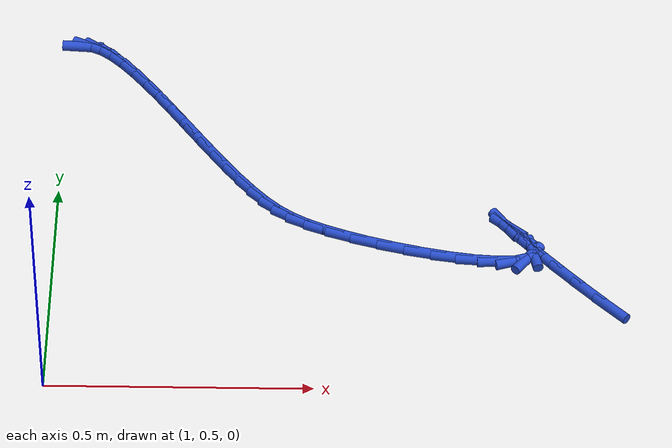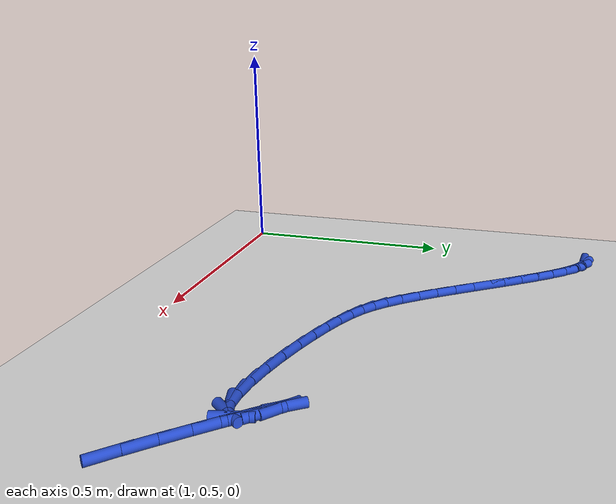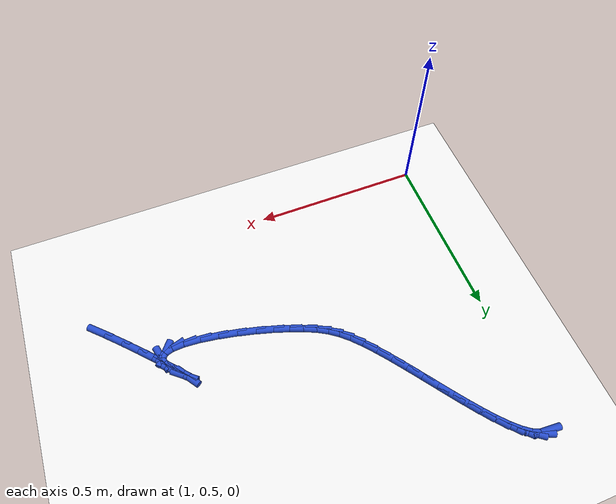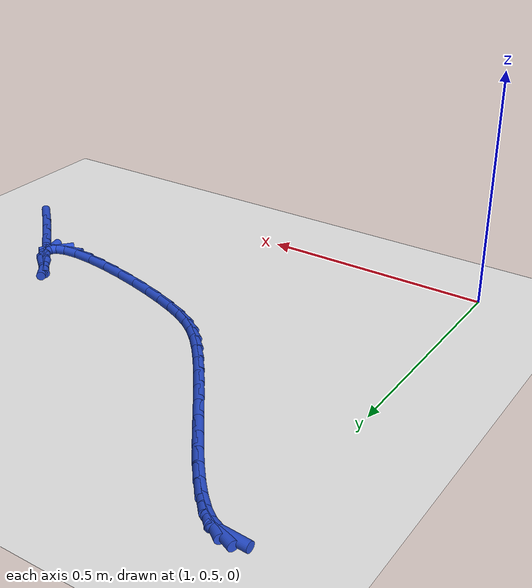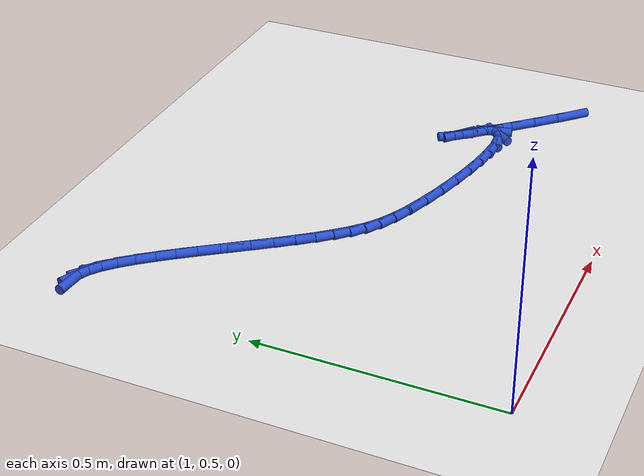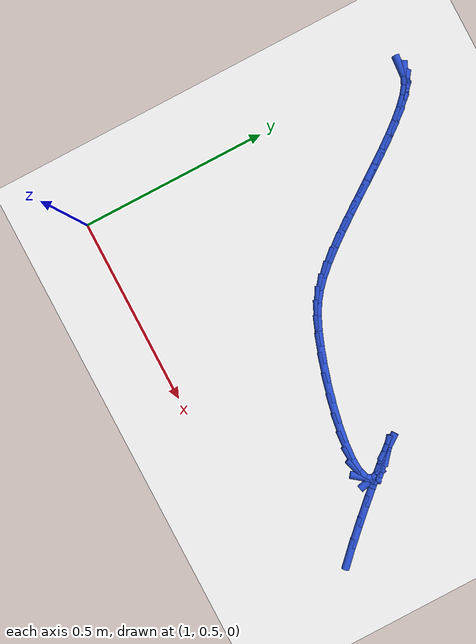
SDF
<sdf version="1.6">
 <world name="default">
  <model name="ground_plane">
   <static>1</static>
   <link name="link">
    <collision name="collision">
     <geometry><plane><normal>0 0 1</normal><size>100 100</size></plane></geometry>
     <surface><friction><ode><mu>100</mu><mu2>50</mu2></ode></friction></surface>
    </collision>
    <visual name="visual">
     <cast_shadows>0</cast_shadows>
     <geometry><plane><normal>0 0 1</normal><size>100 100</size></plane></geometry>
     <material>
      <script><uri>file://media/materials/scripts/gazebo.material</uri><name>Gazebo/WhiteGlow</name></script>
     </material>
    </visual>
   </link>
  </model>
  <model name="line">
   <link name="link_62">
    <pose>1.0247685956993833 1.3913590255691382 0.01 0 1.57 -0.0695958296253201</pose>
    <collision name="collision">
     <geometry><cylinder><radius>0.01</radius><length>0.08</length></cylinder></geometry>
    </collision>
    <visual name="visual">
     <material>
      <script><name>Gazebo/Blue</name><uri>file://media/materials/scripts/gazebo.material</uri></script>
     </material>
     <geometry><cylinder><radius>0.01</radius><length>0.08</length></cylinder></geometry>
    </visual>
   </link>
   <link name="link_63">
    <pose>1.0429132152024498 1.390094192956103 0.01 0 1.57 -0.4246035085404892</pose>
    <collision name="collision">
     <geometry><cylinder><radius>0.01</radius><length>0.08</length></cylinder></geometry>
    </collision>
    <visual name="visual">
     <material>
      <script><name>Gazebo/Blue</name><uri>file://media/materials/scripts/gazebo.material</uri></script>
     </material>
     <geometry><cylinder><radius>0.01</radius><length>0.08</length></cylinder></geometry>
    </visual>
   </link>
   <link name="link_64">
    <pose>1.0628775167572475 1.3810682217665922 0.01 0 1.57 -0.6342842541538061</pose>
    <collision name="collision">
     <geometry><cylinder><radius>0.01</radius><length>0.08</length></cylinder></geometry>
    </collision>
    <visual name="visual">
     <material>
      <script><name>Gazebo/Blue</name><uri>file://media/materials/scripts/gazebo.material</uri></script>
     </material>
     <geometry><cylinder><radius>0.01</radius><length>0.08</length></cylinder></geometry>
    </visual>
   </link>
   <link name="link_65">
    <pose>1.0844610495522642 1.3651892786293804 0.01 0 1.57 -0.7591122647836013</pose>
    <collision name="collision">
     <geometry><cylinder><radius>0.01</radius><length>0.08</length></cylinder></geometry>
    </collision>
    <visual name="visual">
     <material>
      <script><name>Gazebo/Blue</name><uri>file://media/materials/scripts/gazebo.material</uri></script>
     </material>
     <geometry><cylinder><radius>0.01</radius><length>0.08</length></cylinder></geometry>
    </visual>
   </link>
   <link name="link_66">
    <pose>1.1074633627759871 1.3433655301732428 0.01 0 1.57 -0.8370298197613192</pose>
    <collision name="collision">
     <geometry><cylinder><radius>0.01</radius><length>0.08</length></cylinder></geometry>
    </collision>
    <visual name="visual">
     <material>
      <script><name>Gazebo/Blue</name><uri>file://media/materials/scripts/gazebo.material</uri></script>
     </material>
     <geometry><cylinder><radius>0.01</radius><length>0.08</length></cylinder></geometry>
    </visual>
   </link>
   <link name="link_67">
    <pose>1.1316840056169029 1.3165051430269532 0.01 0 1.57 -0.8873131862566405</pose>
    <collision name="collision">
     <geometry><cylinder><radius>0.01</radius><length>0.08</length></cylinder></geometry>
    </collision>
    <visual name="visual">
     <material>
      <script><name>Gazebo/Blue</name><uri>file://media/materials/scripts/gazebo.material</uri></script>
     </material>
     <geometry><cylinder><radius>0.01</radius><length>0.08</length></cylinder></geometry>
    </visual>
   </link>
   <link name="link_68">
    <pose>1.1569225272634998 1.2855162838192866 0.01 0 1.57 -0.9198708373193974</pose>
    <collision name="collision">
     <geometry><cylinder><radius>0.01</radius><length>0.08</length></cylinder></geometry>
    </collision>
    <visual name="visual">
     <material>
      <script><name>Gazebo/Blue</name><uri>file://media/materials/scripts/gazebo.material</uri></script>
     </material>
     <geometry><cylinder><radius>0.01</radius><length>0.08</length></cylinder></geometry>
    </visual>
   </link>
   <link name="link_69">
    <pose>1.1829784769042644 1.2513071191790184 0.01 0 1.57 -0.9399975524762053</pose>
    <collision name="collision">
     <geometry><cylinder><radius>0.01</radius><length>0.08</length></cylinder></geometry>
    </collision>
    <visual name="visual">
     <material>
      <script><name>Gazebo/Blue</name><uri>file://media/materials/scripts/gazebo.material</uri></script>
     </material>
     <geometry><cylinder><radius>0.01</radius><length>0.08</length></cylinder></geometry>
    </visual>
   </link>
   <link name="link_70">
    <pose>1.2096514037276849 1.2147858157349216 0.01 0 1.57 -0.9505473539609733</pose>
    <collision name="collision">
     <geometry><cylinder><radius>0.01</radius><length>0.08</length></cylinder></geometry>
    </collision>
    <visual name="visual">
     <material>
      <script><name>Gazebo/Blue</name><uri>file://media/materials/scripts/gazebo.material</uri></script>
     </material>
     <geometry><cylinder><radius>0.01</radius><length>0.08</length></cylinder></geometry>
    </visual>
   </link>
   <link name="link_71">
    <pose>1.2367408569222473 1.1768605401157723 0.01 0 1.57 -0.9529309636579488</pose>
    <collision name="collision">
     <geometry><cylinder><radius>0.01</radius><length>0.08</length></cylinder></geometry>
    </collision>
    <visual name="visual">
     <material>
      <script><name>Gazebo/Blue</name><uri>file://media/materials/scripts/gazebo.material</uri></script>
     </material>
     <geometry><cylinder><radius>0.01</radius><length>0.08</length></cylinder></geometry>
    </visual>
   </link>
   <link name="link_72">
    <pose>1.2640463856764397 1.1384394589503446 0.01 0 1.57 -0.947555607154451</pose>
    <collision name="collision">
     <geometry><cylinder><radius>0.01</radius><length>0.08</length></cylinder></geometry>
    </collision>
    <visual name="visual">
     <material>
      <script><name>Gazebo/Blue</name><uri>file://media/materials/scripts/gazebo.material</uri></script>
     </material>
     <geometry><cylinder><radius>0.01</radius><length>0.08</length></cylinder></geometry>
    </visual>
   </link>
   <link name="link_73">
    <pose>1.2913675391787491 1.1004307388674135 0.01 0 1.57 -0.9339538489676305</pose>
    <collision name="collision">
     <geometry><cylinder><radius>0.01</radius><length>0.08</length></cylinder></geometry>
    </collision>
    <visual name="visual">
     <material>
      <script><name>Gazebo/Blue</name><uri>file://media/materials/scripts/gazebo.material</uri></script>
     </material>
     <geometry><cylinder><radius>0.01</radius><length>0.08</length></cylinder></geometry>
    </visual>
   </link>
   <link name="link_74">
    <pose>1.3185038666176638 1.0637425464957528 0.01 0 1.57 -0.9106720111792025</pose>
    <collision name="collision">
     <geometry><cylinder><radius>0.01</radius><length>0.08</length></cylinder></geometry>
    </collision>
    <visual name="visual">
     <material>
      <script><name>Gazebo/Blue</name><uri>file://media/materials/scripts/gazebo.material</uri></script>
     </material>
     <geometry><cylinder><radius>0.01</radius><length>0.08</length></cylinder></geometry>
    </visual>
   </link>
   <link name="link_75">
    <pose>1.3452549171816692 1.0292830484641378 0.01 0 1.57 -0.8748698561009407</pose>
    <collision name="collision">
     <geometry><cylinder><radius>0.01</radius><length>0.08</length></cylinder></geometry>
    </collision>
    <visual name="visual">
     <material>
      <script><name>Gazebo/Blue</name><uri>file://media/materials/scripts/gazebo.material</uri></script>
     </material>
     <geometry><cylinder><radius>0.01</radius><length>0.08</length></cylinder></geometry>
    </visual>
   </link>
   <link name="link_76">
    <pose>1.371420240059254 0.9979604114013434 0.01 0 1.57 -0.8214361453644745</pose>
    <collision name="collision">
     <geometry><cylinder><radius>0.01</radius><length>0.08</length></cylinder></geometry>
    </collision>
    <visual name="visual">
     <material>
      <script><name>Gazebo/Blue</name><uri>file://media/materials/scripts/gazebo.material</uri></script>
     </material>
     <geometry><cylinder><radius>0.01</radius><length>0.08</length></cylinder></geometry>
    </visual>
   </link>
   <link name="link_77">
    <pose>1.3967993844423998 0.9706828019328744 0.01 0 1.57 -0.7413354944884598</pose>
    <collision name="collision">
     <geometry><cylinder><radius>0.01</radius><length>0.08</length></cylinder></geometry>
    </collision>
    <visual name="visual">
     <material>
      <script><name>Gazebo/Blue</name><uri>file://media/materials/scripts/gazebo.material</uri></script>
     </material>
     <geometry><cylinder><radius>0.01</radius><length>0.08</length></cylinder></geometry>
    </visual>
   </link>
   <link name="link_78">
    <pose>1.4215902162116727 0.9479857675130741 0.01 0 1.57 -0.6329336689838985</pose>
    <collision name="collision">
     <geometry><cylinder><radius>0.01</radius><length>0.08</length></cylinder></geometry>
    </collision>
    <visual name="visual">
     <material>
      <script><name>Gazebo/Blue</name><uri>file://media/materials/scripts/gazebo.material</uri></script>
     </material>
     <geometry><cylinder><radius>0.01</radius><length>0.08</length></cylinder></geometry>
    </visual>
   </link>
   <link name="link_79">
    <pose>1.4475740198498712 0.9289235917073313 0.01 0 1.57 -0.5183442523775311</pose>
    <collision name="collision">
     <geometry><cylinder><radius>0.01</radius><length>0.08</length></cylinder></geometry>
    </collision>
    <visual name="visual">
     <material>
      <script><name>Gazebo/Blue</name><uri>file://media/materials/scripts/gazebo.material</uri></script>
     </material>
     <geometry><cylinder><radius>0.01</radius><length>0.08</length></cylinder></geometry>
    </visual>
   </link>
   <link name="link_80">
    <pose>1.4769254876514384 0.9121825310891853 0.01 0 1.57 -0.4236036270479465</pose>
    <collision name="collision">
     <geometry><cylinder><radius>0.01</radius><length>0.08</length></cylinder></geometry>
    </collision>
    <visual name="visual">
     <material>
      <script><name>Gazebo/Blue</name><uri>file://media/materials/scripts/gazebo.material</uri></script>
     </material>
     <geometry><cylinder><radius>0.01</radius><length>0.08</length></cylinder></geometry>
    </visual>
   </link>
   <link name="link_81">
    <pose>1.5118193119108163 0.8964488422321748 0.01 0 1.57 -0.358852729025944</pose>
    <collision name="collision">
     <geometry><cylinder><radius>0.01</radius><length>0.08</length></cylinder></geometry>
    </collision>
    <visual name="visual">
     <material>
      <script><name>Gazebo/Blue</name><uri>file://media/materials/scripts/gazebo.material</uri></script>
     </material>
     <geometry><cylinder><radius>0.01</radius><length>0.08</length></cylinder></geometry>
    </visual>
   </link>
   <link name="link_82">
    <pose>1.5537262659030808 0.8807298119460579 0.01 0 1.57 -0.312945715665771</pose>
    <collision name="collision">
     <geometry><cylinder><radius>0.01</radius><length>0.08</length></cylinder></geometry>
    </collision>
    <visual name="visual">
     <material>
      <script><name>Gazebo/Blue</name><uri>file://media/materials/scripts/gazebo.material</uri></script>
     </material>
     <geometry><cylinder><radius>0.01</radius><length>0.08</length></cylinder></geometry>
    </visual>
   </link>
   <link name="link_83">
    <pose>1.6011606317082903 0.8653810683136692 0.01 0 1.57 -0.27434147482503407</pose>
    <collision name="collision">
     <geometry><cylinder><radius>0.01</radius><length>0.08</length></cylinder></geometry>
    </collision>
    <visual name="visual">
     <material>
      <script><name>Gazebo/Blue</name><uri>file://media/materials/scripts/gazebo.material</uri></script>
     </material>
     <geometry><cylinder><radius>0.01</radius><length>0.08</length></cylinder></geometry>
    </visual>
   </link>
   <link name="link_84">
    <pose>1.6518606219428615 0.851112174680822 0.01 0 1.57 -0.23683497037293266</pose>
    <collision name="collision">
     <geometry><cylinder><radius>0.01</radius><length>0.08</length></cylinder></geometry>
    </collision>
    <visual name="visual">
     <material>
      <script><name>Gazebo/Blue</name><uri>file://media/materials/scripts/gazebo.material</uri></script>
     </material>
     <geometry><cylinder><radius>0.01</radius><length>0.08</length></cylinder></geometry>
    </visual>
   </link>
   <link name="link_85">
    <pose>1.7035644460419246 0.8386326958441921 0.01 0 1.57 -0.19532328670407614</pose>
    <collision name="collision">
     <geometry><cylinder><radius>0.01</radius><length>0.08</length></cylinder></geometry>
    </collision>
    <visual name="visual">
     <material>
      <script><name>Gazebo/Blue</name><uri>file://media/materials/scripts/gazebo.material</uri></script>
     </material>
     <geometry><cylinder><radius>0.01</radius><length>0.08</length></cylinder></geometry>
    </visual>
   </link>
   <link name="link_86">
    <pose>1.7540103134406069 0.8286521966004562 0.01 0 1.57 -0.1433215339217557</pose>
    <collision name="collision">
     <geometry><cylinder><radius>0.01</radius><length>0.08</length></cylinder></geometry>
    </collision>
    <visual name="visual">
     <material>
      <script><name>Gazebo/Blue</name><uri>file://media/materials/scripts/gazebo.material</uri></script>
     </material>
     <geometry><cylinder><radius>0.01</radius><length>0.08</length></cylinder></geometry>
    </visual>
   </link>
   <link name="link_87">
    <pose>1.8009364335740368 0.8218802417462893 0.01 0 1.57 -0.069250483388033</pose>
    <collision name="collision">
     <geometry><cylinder><radius>0.01</radius><length>0.08</length></cylinder></geometry>
    </collision>
    <visual name="visual">
     <material>
      <script><name>Gazebo/Blue</name><uri>file://media/materials/scripts/gazebo.material</uri></script>
     </material>
     <geometry><cylinder><radius>0.01</radius><length>0.08</length></cylinder></geometry>
    </visual>
   </link>
   <link name="link_88">
    <pose>1.8420810158773433 0.8190263960783677 0.01 0 1.57 0.05353674185991613</pose>
    <collision name="collision">
     <geometry><cylinder><radius>0.01</radius><length>0.08</length></cylinder></geometry>
    </collision>
    <visual name="visual">
     <material>
      <script><name>Gazebo/Blue</name><uri>file://media/materials/scripts/gazebo.material</uri></script>
     </material>
     <geometry><cylinder><radius>0.01</radius><length>0.08</length></cylinder></geometry>
    </visual>
   </link>
   <link name="link_89">
    <pose>1.8751822697856557 0.8208002243933675 0.01 0 1.57 0.3023762385475082</pose>
    <collision name="collision">
     <geometry><cylinder><radius>0.01</radius><length>0.08</length></cylinder></geometry>
    </collision>
    <visual name="visual">
     <material>
      <script><name>Gazebo/Blue</name><uri>file://media/materials/scripts/gazebo.material</uri></script>
     </material>
     <geometry><cylinder><radius>0.01</radius><length>0.08</length></cylinder></geometry>
    </visual>
   </link>
   <link name="link_90">
    <pose>1.8979784047341017 0.8279112914879647 0.01 0 1.57 0.9099745277133447</pose>
    <collision name="collision">
     <geometry><cylinder><radius>0.01</radius><length>0.08</length></cylinder></geometry>
    </collision>
    <visual name="visual">
     <material>
      <script><name>Gazebo/Blue</name><uri>file://media/materials/scripts/gazebo.material</uri></script>
     </material>
     <geometry><cylinder><radius>0.01</radius><length>0.08</length></cylinder></geometry>
    </visual>
   </link>
   <link name="link_91">
    <pose>1.9082076301578104 0.8410691621588351 0.01 0 1.57 -1.3438124528086257</pose>
    <collision name="collision">
     <geometry><cylinder><radius>0.01</radius><length>0.08</length></cylinder></geometry>
    </collision>
    <visual name="visual">
     <material>
      <script><name>Gazebo/Blue</name><uri>file://media/materials/scripts/gazebo.material</uri></script>
     </material>
     <geometry><cylinder><radius>0.01</radius><length>0.08</length></cylinder></geometry>
    </visual>
   </link>
   <link name="link_92">
    <pose>1.9036081554919098 0.8609834012026544 0.01 0 1.57 -0.9158995933138584</pose>
    <collision name="collision">
     <geometry><cylinder><radius>0.01</radius><length>0.08</length></cylinder></geometry>
    </collision>
    <visual name="visual">
     <material>
      <script><name>Gazebo/Blue</name><uri>file://media/materials/scripts/gazebo.material</uri></script>
     </material>
     <geometry><cylinder><radius>0.01</radius><length>0.08</length></cylinder></geometry>
    </visual>
   </link>
   <link name="link_93">
    <pose>1.883371850250374 0.8873341314936313 0.01 0 1.57 -0.7956234269323262</pose>
    <collision name="collision">
     <geometry><cylinder><radius>0.01</radius><length>0.08</length></cylinder></geometry>
    </collision>
    <visual name="visual">
     <material>
      <script><name>Gazebo/Blue</name><uri>file://media/materials/scripts/gazebo.material</uri></script>
     </material>
     <geometry><cylinder><radius>0.01</radius><length>0.08</length></cylinder></geometry>
    </visual>
   </link>
   <link name="link_94">
    <pose>1.862548687568971 0.9085875533359357 0.01 0 1.57 -0.6902341370173587</pose>
    <collision name="collision">
     <geometry><cylinder><radius>0.01</radius><length>0.08</length></cylinder></geometry>
    </collision>
    <visual name="visual">
     <material>
      <script><name>Gazebo/Blue</name><uri>file://media/materials/scripts/gazebo.material</uri></script>
     </material>
     <geometry><cylinder><radius>0.01</radius><length>0.08</length></cylinder></geometry>
    </visual>
   </link>
   <link name="link_95">
    <pose>1.8552792391552968 0.9145901535770324 0.01 0 1.57 -0.959761695943587</pose>
    <collision name="collision">
     <geometry><cylinder><radius>0.01</radius><length>0.08</length></cylinder></geometry>
    </collision>
    <visual name="visual">
     <material>
      <script><name>Gazebo/Blue</name><uri>file://media/materials/scripts/gazebo.material</uri></script>
     </material>
     <geometry><cylinder><radius>0.01</radius><length>0.08</length></cylinder></geometry>
    </visual>
   </link>
   <link name="link_96">
    <pose>1.8607253344804509 0.9068151268396591 0.01 0 1.57 -0.8700162168826135</pose>
    <collision name="collision">
     <geometry><cylinder><radius>0.01</radius><length>0.08</length></cylinder></geometry>
    </collision>
    <visual name="visual">
     <material>
      <script><name>Gazebo/Blue</name><uri>file://media/materials/scripts/gazebo.material</uri></script>
     </material>
     <geometry><cylinder><radius>0.01</radius><length>0.08</length></cylinder></geometry>
    </visual>
   </link>
   <link name="link_97">
    <pose>1.876938210476383 0.8875969695257118 0.01 0 1.57 -0.8470896629833375</pose>
    <collision name="collision">
     <geometry><cylinder><radius>0.01</radius><length>0.08</length></cylinder></geometry>
    </collision>
    <visual name="visual">
     <material>
      <script><name>Gazebo/Blue</name><uri>file://media/materials/scripts/gazebo.material</uri></script>
     </material>
     <geometry><cylinder><radius>0.01</radius><length>0.08</length></cylinder></geometry>
    </visual>
   </link>
   <link name="link_98">
    <pose>1.901969104075047 0.8592701780370853 0.01 0 1.57 -0.8331339561645354</pose>
    <collision name="collision">
     <geometry><cylinder><radius>0.01</radius><length>0.08</length></cylinder></geometry>
    </collision>
    <visual name="visual">
     <material>
      <script><name>Gazebo/Blue</name><uri>file://media/materials/scripts/gazebo.material</uri></script>
     </material>
     <geometry><cylinder><radius>0.01</radius><length>0.08</length></cylinder></geometry>
    </visual>
   </link>
   <link name="link_99">
    <pose>1.9338692522083956 0.8241692487756753 0.01 0 1.57 -0.8210023871950575</pose>
    <collision name="collision">
     <geometry><cylinder><radius>0.01</radius><length>0.08</length></cylinder></geometry>
    </collision>
    <visual name="visual">
     <material>
      <script><name>Gazebo/Blue</name><uri>file://media/materials/scripts/gazebo.material</uri></script>
     </material>
     <geometry><cylinder><radius>0.01</radius><length>0.08</length></cylinder></geometry>
    </visual>
   </link>
   <link name="link_100">
    <pose>1.9706898918083802 0.7846286781433768 0.01 0 1.57 -0.8081519864397035</pose>
    <collision name="collision">
     <geometry><cylinder><radius>0.01</radius><length>0.08</length></cylinder></geometry>
    </collision>
    <visual name="visual">
     <material>
      <script><name>Gazebo/Blue</name><uri>file://media/materials/scripts/gazebo.material</uri></script>
     </material>
     <geometry><cylinder><radius>0.01</radius><length>0.08</length></cylinder></geometry>
    </visual>
   </link>
   <link name="link_101">
    <pose>2.0104822598069543 0.7429829625420864 0.01 0 1.57 -0.79270702549414</pose>
    <collision name="collision">
     <geometry><cylinder><radius>0.01</radius><length>0.08</length></cylinder></geometry>
    </collision>
    <visual name="visual">
     <material>
      <script><name>Gazebo/Blue</name><uri>file://media/materials/scripts/gazebo.material</uri></script>
     </material>
     <geometry><cylinder><radius>0.01</radius><length>0.08</length></cylinder></geometry>
    </visual>
   </link>
   <link name="link_102">
    <pose>2.051297593136069 0.7015665983736987 0.01 0 1.57 -0.772275590508974</pose>
    <collision name="collision">
     <geometry><cylinder><radius>0.01</radius><length>0.08</length></cylinder></geometry>
    </collision>
    <visual name="visual">
     <material>
      <script><name>Gazebo/Blue</name><uri>file://media/materials/scripts/gazebo.material</uri></script>
     </material>
     <geometry><cylinder><radius>0.01</radius><length>0.08</length></cylinder></geometry>
    </visual>
   </link>
  </model>
 </world>
</sdf>
